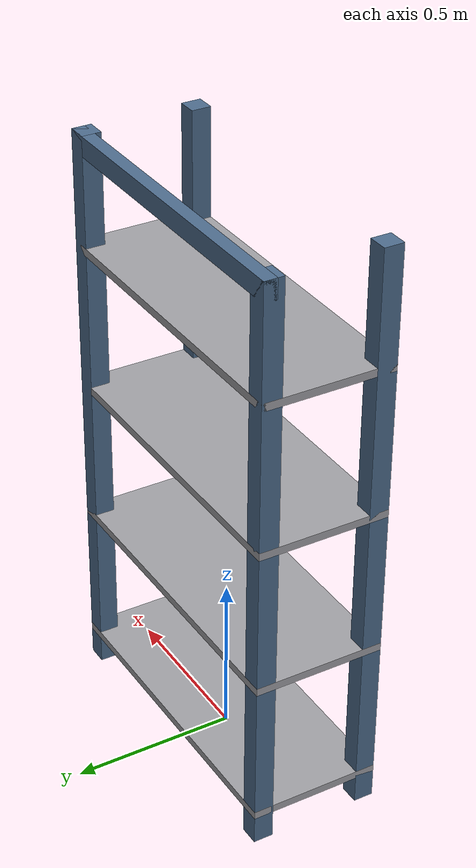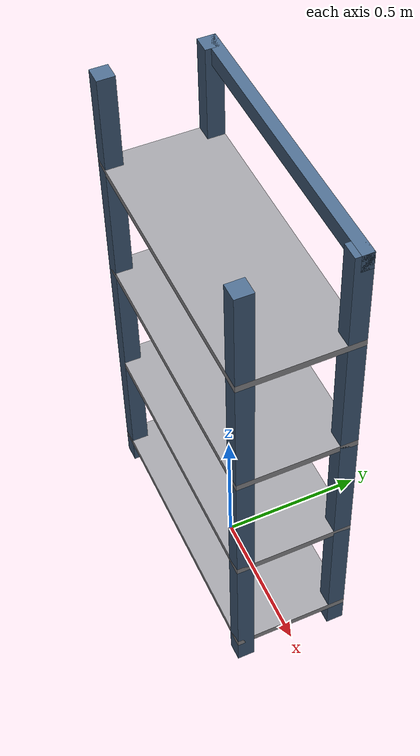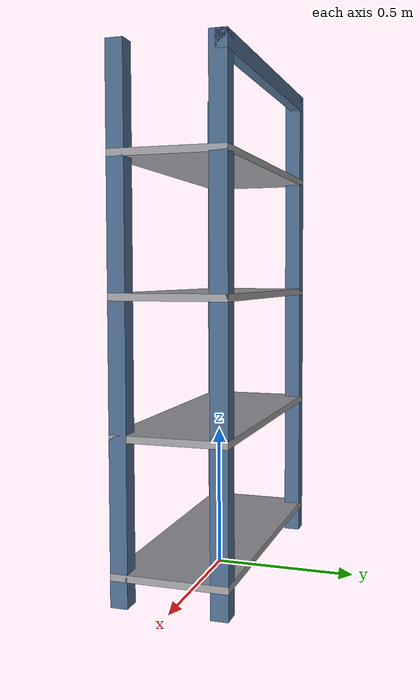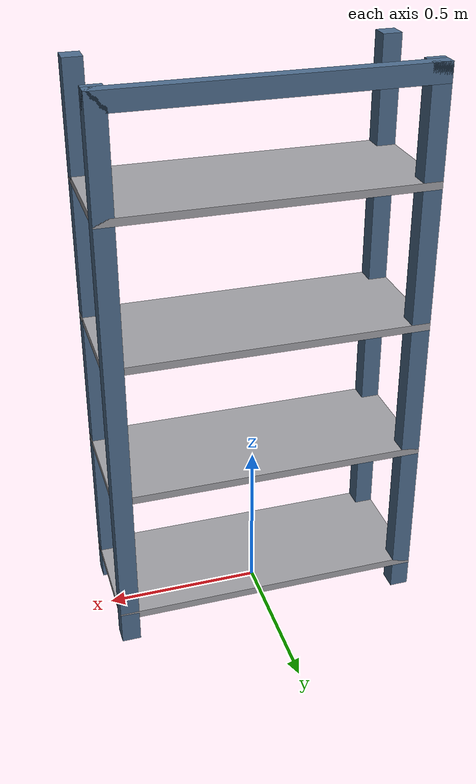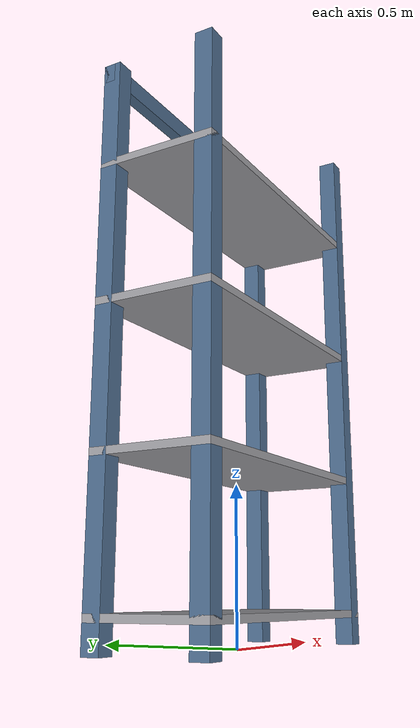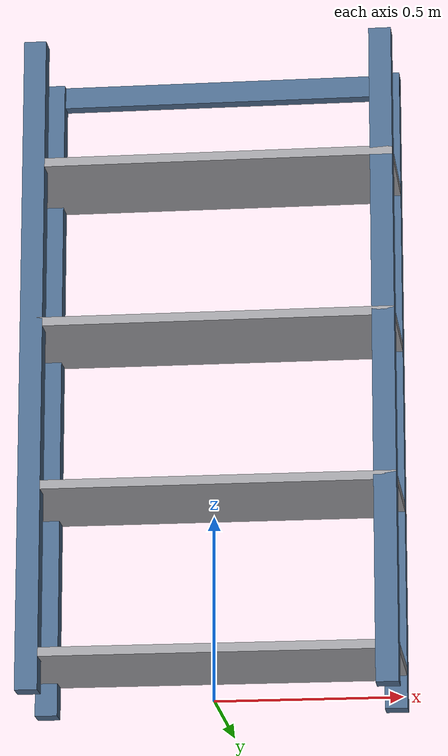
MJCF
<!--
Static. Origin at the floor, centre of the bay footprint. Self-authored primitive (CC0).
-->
<mujoco model="shelf_unit">
  <asset>
    <material name="mat" rgba="0.30 0.42 0.55 1"/>
    <material name="deck_mat" rgba="0.62 0.62 0.64 1"/>
  </asset>
  <worldbody>
    <body name="shelf_unit">
      <geom name="deck0" type="box" size="0.50 0.20 0.012" pos="0 0 0.10" material="deck_mat" friction="0.8 0.01 0.0002" condim="4"/>
      <geom name="deck1" type="box" size="0.50 0.20 0.012" pos="0 0 0.55" material="deck_mat" friction="0.8 0.01 0.0002" condim="4"/>
      <geom name="deck2" type="box" size="0.50 0.20 0.012" pos="0 0 1.00" material="deck_mat" friction="0.8 0.01 0.0002" condim="4"/>
      <geom name="deck3" type="box" size="0.50 0.20 0.012" pos="0 0 1.45" material="deck_mat" friction="0.8 0.01 0.0002" condim="4"/>
      <geom name="post0" type="box" size="0.03 0.03 0.90" pos="0.47 0.17 0.90" material="mat" condim="4"/>
      <geom name="post1" type="box" size="0.03 0.03 0.90" pos="0.47 -0.17 0.90" material="mat" condim="4"/>
      <geom name="post2" type="box" size="0.03 0.03 0.90" pos="-0.47 0.17 0.90" material="mat" condim="4"/>
      <geom name="post3" type="box" size="0.03 0.03 0.90" pos="-0.47 -0.17 0.90" material="mat" condim="4"/>
      <geom name="brace" type="box" size="0.50 0.02 0.03" pos="0 0.18 1.77" material="mat" condim="4"/>
    </body>
  </worldbody>
</mujoco>
